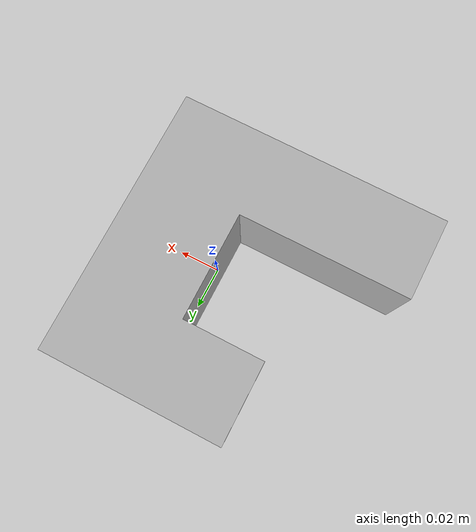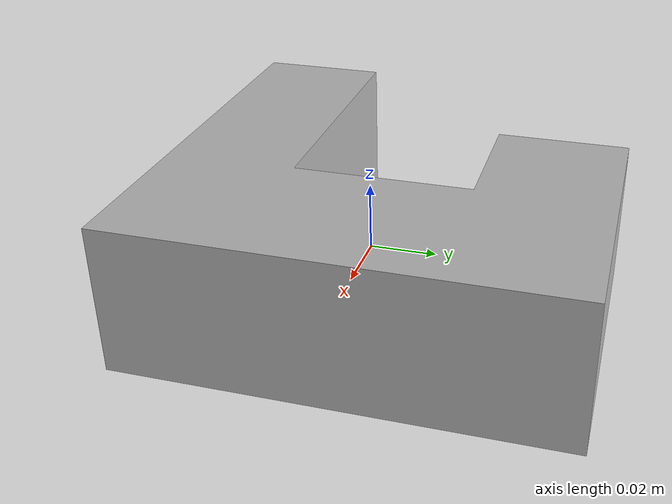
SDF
<?xml version='1.0'?>
<sdf version="1.4">
  <model name="piece">
  <pose>0 0 0 0 0 0</pose>
  <static>true</static>
    <link name="link">
      <inertial>
        <mass>10.0</mass>
      </inertial>
      <collision name="collision">
        <geometry>
          <mesh>
            <uri>model://piece/meshes/piece.stl</uri>
            <scale>0.045 0.045 0.02286</scale>
          </mesh>
        </geometry>
      </collision>
      <visual name="visual">
        <geometry>
          <mesh>
            <uri>model://piece/meshes/piece.stl</uri>
            <scale>0.045 0.045 0.02286</scale>
          </mesh>
        </geometry>
      </visual>
    </link>
  </model>
</sdf>
